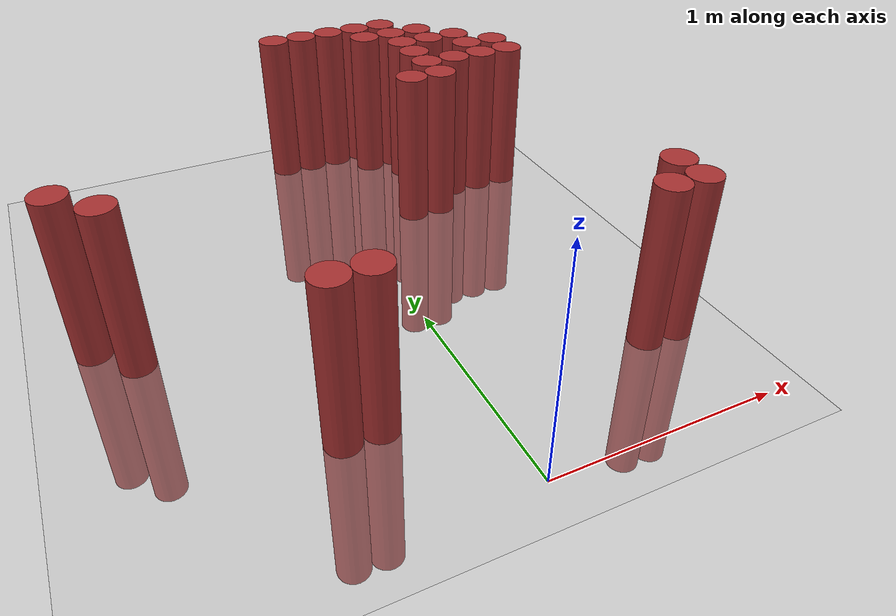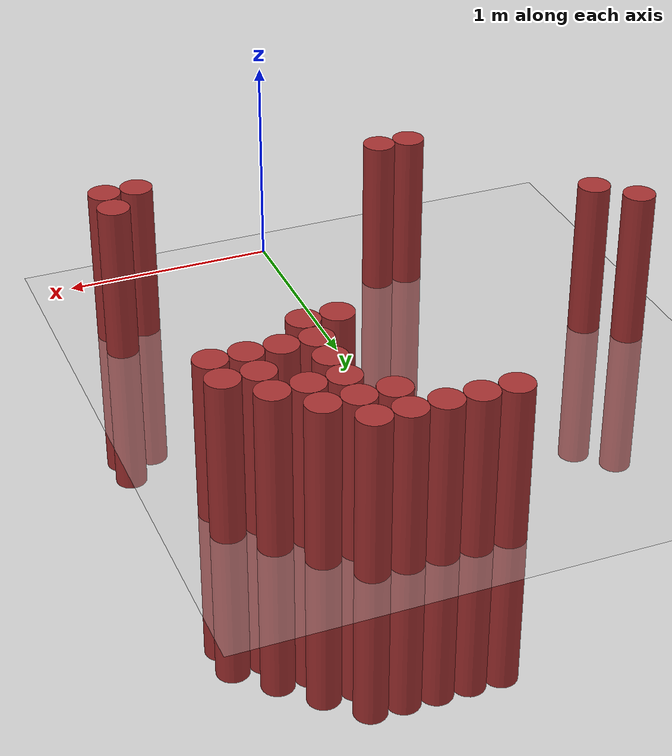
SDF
<sdf version="1.6">
 <world name="default">
  <model name="ground_plane">
   <static>1</static>
   <link name="link">
    <collision name="collision">
     <geometry><plane><normal>0 0 1</normal><size>100 100</size></plane></geometry>
     <surface><friction><ode><mu>100</mu><mu2>50</mu2></ode></friction></surface>
    </collision>
    <visual name="visual">
     <cast_shadows>0</cast_shadows>
     <geometry><plane><normal>0 0 1</normal><size>100 100</size></plane></geometry>
     <material>
      <script><uri>file://media/materials/scripts/gazebo.material</uri><name>Gazebo/Grey</name></script>
     </material>
    </visual>
   </link>
  </model>
  <model name="unit_cylinder_152">
   <static>1</static>
   <pose>-1.325000 1.375000 0.000000 0.000000 0.000000 0.000000</pose>
   <link name="link">
    <inertial>
     <mass>1</mass>
     <inertia><ixx>0.145833</ixx><ixy>0</ixy><ixz>0</ixz><iyy>0.145833</iyy><iyz>0</iyz><izz>0.125</izz></inertia>
    </inertial>
    <collision name="collision">
     <geometry><cylinder><radius>0.075000</radius><length>1.5</length></cylinder></geometry>
    </collision>
    <visual name="visual">
     <geometry><cylinder><radius>0.075000</radius><length>1.5</length></cylinder></geometry>
     <material>
      <ambient>0.648000 0.192000 0.192000 1</ambient>
      <diffuse>0.648000 0.192000 0.192000 1</diffuse>
     </material>
     <material>
      <script><name>Gazebo/Grey</name><uri>file://media/materials/scripts/gazebo.material</uri></script>
     </material>
    </visual>
   </link>
  </model>
  <model name="unit_cylinder_153">
   <static>1</static>
   <pose>-1.175000 1.225000 0.000000 0.000000 0.000000 0.000000</pose>
   <link name="link">
    <inertial>
     <mass>1</mass>
     <inertia><ixx>0.145833</ixx><ixy>0</ixy><ixz>0</ixz><iyy>0.145833</iyy><iyz>0</iyz><izz>0.125</izz></inertia>
    </inertial>
    <collision name="collision">
     <geometry><cylinder><radius>0.075000</radius><length>1.5</length></cylinder></geometry>
    </collision>
    <visual name="visual">
     <geometry><cylinder><radius>0.075000</radius><length>1.5</length></cylinder></geometry>
     <material>
      <ambient>0.648000 0.192000 0.192000 1</ambient>
      <diffuse>0.648000 0.192000 0.192000 1</diffuse>
     </material>
     <material>
      <script><name>Gazebo/Grey</name><uri>file://media/materials/scripts/gazebo.material</uri></script>
     </material>
    </visual>
   </link>
  </model>
  <model name="unit_cylinder_160">
   <static>1</static>
   <pose>-0.575000 0.475000 0.000000 0.000000 0.000000 0.000000</pose>
   <link name="link">
    <inertial>
     <mass>1</mass>
     <inertia><ixx>0.145833</ixx><ixy>0</ixy><ixz>0</ixz><iyy>0.145833</iyy><iyz>0</iyz><izz>0.125</izz></inertia>
    </inertial>
    <collision name="collision">
     <geometry><cylinder><radius>0.075000</radius><length>1.5</length></cylinder></geometry>
    </collision>
    <visual name="visual">
     <geometry><cylinder><radius>0.075000</radius><length>1.5</length></cylinder></geometry>
     <material>
      <ambient>0.648000 0.192000 0.192000 1</ambient>
      <diffuse>0.648000 0.192000 0.192000 1</diffuse>
     </material>
     <material>
      <script><name>Gazebo/Grey</name><uri>file://media/materials/scripts/gazebo.material</uri></script>
     </material>
    </visual>
   </link>
  </model>
  <model name="unit_cylinder_164">
   <static>1</static>
   <pose>-0.425000 0.475000 0.000000 0.000000 0.000000 0.000000</pose>
   <link name="link">
    <inertial>
     <mass>1</mass>
     <inertia><ixx>0.145833</ixx><ixy>0</ixy><ixz>0</ixz><iyy>0.145833</iyy><iyz>0</iyz><izz>0.125</izz></inertia>
    </inertial>
    <collision name="collision">
     <geometry><cylinder><radius>0.075000</radius><length>1.5</length></cylinder></geometry>
    </collision>
    <visual name="visual">
     <geometry><cylinder><radius>0.075000</radius><length>1.5</length></cylinder></geometry>
     <material>
      <ambient>0.648000 0.192000 0.192000 1</ambient>
      <diffuse>0.648000 0.192000 0.192000 1</diffuse>
     </material>
     <material>
      <script><name>Gazebo/Grey</name><uri>file://media/materials/scripts/gazebo.material</uri></script>
     </material>
    </visual>
   </link>
  </model>
  <model name="unit_cylinder_167">
   <static>1</static>
   <pose>-0.125000 2.575000 0.000000 0.000000 0.000000 0.000000</pose>
   <link name="link">
    <inertial>
     <mass>1</mass>
     <inertia><ixx>0.145833</ixx><ixy>0</ixy><ixz>0</ixz><iyy>0.145833</iyy><iyz>0</iyz><izz>0.125</izz></inertia>
    </inertial>
    <collision name="collision">
     <geometry><cylinder><radius>0.075000</radius><length>1.5</length></cylinder></geometry>
    </collision>
    <visual name="visual">
     <geometry><cylinder><radius>0.075000</radius><length>1.5</length></cylinder></geometry>
     <material>
      <ambient>0.648000 0.192000 0.192000 1</ambient>
      <diffuse>0.648000 0.192000 0.192000 1</diffuse>
     </material>
     <material>
      <script><name>Gazebo/Grey</name><uri>file://media/materials/scripts/gazebo.material</uri></script>
     </material>
    </visual>
   </link>
  </model>
  <model name="unit_cylinder_171">
   <static>1</static>
   <pose>0.025000 2.575000 0.000000 0.000000 0.000000 0.000000</pose>
   <link name="link">
    <inertial>
     <mass>1</mass>
     <inertia><ixx>0.145833</ixx><ixy>0</ixy><ixz>0</ixz><iyy>0.145833</iyy><iyz>0</iyz><izz>0.125</izz></inertia>
    </inertial>
    <collision name="collision">
     <geometry><cylinder><radius>0.075000</radius><length>1.5</length></cylinder></geometry>
    </collision>
    <visual name="visual">
     <geometry><cylinder><radius>0.075000</radius><length>1.5</length></cylinder></geometry>
     <material>
      <ambient>0.648000 0.192000 0.192000 1</ambient>
      <diffuse>0.648000 0.192000 0.192000 1</diffuse>
     </material>
     <material>
      <script><name>Gazebo/Grey</name><uri>file://media/materials/scripts/gazebo.material</uri></script>
     </material>
    </visual>
   </link>
  </model>
  <model name="unit_cylinder_177">
   <static>1</static>
   <pose>0.175000 2.575000 0.000000 0.000000 0.000000 0.000000</pose>
   <link name="link">
    <inertial>
     <mass>1</mass>
     <inertia><ixx>0.145833</ixx><ixy>0</ixy><ixz>0</ixz><iyy>0.145833</iyy><iyz>0</iyz><izz>0.125</izz></inertia>
    </inertial>
    <collision name="collision">
     <geometry><cylinder><radius>0.075000</radius><length>1.5</length></cylinder></geometry>
    </collision>
    <visual name="visual">
     <geometry><cylinder><radius>0.075000</radius><length>1.5</length></cylinder></geometry>
     <material>
      <ambient>0.648000 0.192000 0.192000 1</ambient>
      <diffuse>0.648000 0.192000 0.192000 1</diffuse>
     </material>
     <material>
      <script><name>Gazebo/Grey</name><uri>file://media/materials/scripts/gazebo.material</uri></script>
     </material>
    </visual>
   </link>
  </model>
  <model name="unit_cylinder_182">
   <static>1</static>
   <pose>0.325000 1.825000 0.000000 0.000000 0.000000 0.000000</pose>
   <link name="link">
    <inertial>
     <mass>1</mass>
     <inertia><ixx>0.145833</ixx><ixy>0</ixy><ixz>0</ixz><iyy>0.145833</iyy><iyz>0</iyz><izz>0.125</izz></inertia>
    </inertial>
    <collision name="collision">
     <geometry><cylinder><radius>0.075000</radius><length>1.5</length></cylinder></geometry>
    </collision>
    <visual name="visual">
     <geometry><cylinder><radius>0.075000</radius><length>1.5</length></cylinder></geometry>
     <material>
      <ambient>0.648000 0.192000 0.192000 1</ambient>
      <diffuse>0.648000 0.192000 0.192000 1</diffuse>
     </material>
     <material>
      <script><name>Gazebo/Grey</name><uri>file://media/materials/scripts/gazebo.material</uri></script>
     </material>
    </visual>
   </link>
  </model>
  <model name="unit_cylinder_183">
   <static>1</static>
   <pose>0.325000 2.425000 0.000000 0.000000 0.000000 0.000000</pose>
   <link name="link">
    <inertial>
     <mass>1</mass>
     <inertia><ixx>0.145833</ixx><ixy>0</ixy><ixz>0</ixz><iyy>0.145833</iyy><iyz>0</iyz><izz>0.125</izz></inertia>
    </inertial>
    <collision name="collision">
     <geometry><cylinder><radius>0.075000</radius><length>1.5</length></cylinder></geometry>
    </collision>
    <visual name="visual">
     <geometry><cylinder><radius>0.075000</radius><length>1.5</length></cylinder></geometry>
     <material>
      <ambient>0.648000 0.192000 0.192000 1</ambient>
      <diffuse>0.648000 0.192000 0.192000 1</diffuse>
     </material>
     <material>
      <script><name>Gazebo/Grey</name><uri>file://media/materials/scripts/gazebo.material</uri></script>
     </material>
    </visual>
   </link>
  </model>
  <model name="unit_cylinder_184">
   <static>1</static>
   <pose>0.325000 2.575000 0.000000 0.000000 0.000000 0.000000</pose>
   <link name="link">
    <inertial>
     <mass>1</mass>
     <inertia><ixx>0.145833</ixx><ixy>0</ixy><ixz>0</ixz><iyy>0.145833</iyy><iyz>0</iyz><izz>0.125</izz></inertia>
    </inertial>
    <collision name="collision">
     <geometry><cylinder><radius>0.075000</radius><length>1.5</length></cylinder></geometry>
    </collision>
    <visual name="visual">
     <geometry><cylinder><radius>0.075000</radius><length>1.5</length></cylinder></geometry>
     <material>
      <ambient>0.648000 0.192000 0.192000 1</ambient>
      <diffuse>0.648000 0.192000 0.192000 1</diffuse>
     </material>
     <material>
      <script><name>Gazebo/Grey</name><uri>file://media/materials/scripts/gazebo.material</uri></script>
     </material>
    </visual>
   </link>
  </model>
  <model name="unit_cylinder_188">
   <static>1</static>
   <pose>0.475000 1.825000 0.000000 0.000000 0.000000 0.000000</pose>
   <link name="link">
    <inertial>
     <mass>1</mass>
     <inertia><ixx>0.145833</ixx><ixy>0</ixy><ixz>0</ixz><iyy>0.145833</iyy><iyz>0</iyz><izz>0.125</izz></inertia>
    </inertial>
    <collision name="collision">
     <geometry><cylinder><radius>0.075000</radius><length>1.5</length></cylinder></geometry>
    </collision>
    <visual name="visual">
     <geometry><cylinder><radius>0.075000</radius><length>1.5</length></cylinder></geometry>
     <material>
      <ambient>0.648000 0.192000 0.192000 1</ambient>
      <diffuse>0.648000 0.192000 0.192000 1</diffuse>
     </material>
     <material>
      <script><name>Gazebo/Grey</name><uri>file://media/materials/scripts/gazebo.material</uri></script>
     </material>
    </visual>
   </link>
  </model>
  <model name="unit_cylinder_189">
   <static>1</static>
   <pose>0.475000 1.975000 0.000000 0.000000 0.000000 0.000000</pose>
   <link name="link">
    <inertial>
     <mass>1</mass>
     <inertia><ixx>0.145833</ixx><ixy>0</ixy><ixz>0</ixz><iyy>0.145833</iyy><iyz>0</iyz><izz>0.125</izz></inertia>
    </inertial>
    <collision name="collision">
     <geometry><cylinder><radius>0.075000</radius><length>1.5</length></cylinder></geometry>
    </collision>
    <visual name="visual">
     <geometry><cylinder><radius>0.075000</radius><length>1.5</length></cylinder></geometry>
     <material>
      <ambient>0.648000 0.192000 0.192000 1</ambient>
      <diffuse>0.648000 0.192000 0.192000 1</diffuse>
     </material>
     <material>
      <script><name>Gazebo/Grey</name><uri>file://media/materials/scripts/gazebo.material</uri></script>
     </material>
    </visual>
   </link>
  </model>
  <model name="unit_cylinder_190">
   <static>1</static>
   <pose>0.475000 2.125000 0.000000 0.000000 0.000000 0.000000</pose>
   <link name="link">
    <inertial>
     <mass>1</mass>
     <inertia><ixx>0.145833</ixx><ixy>0</ixy><ixz>0</ixz><iyy>0.145833</iyy><iyz>0</iyz><izz>0.125</izz></inertia>
    </inertial>
    <collision name="collision">
     <geometry><cylinder><radius>0.075000</radius><length>1.5</length></cylinder></geometry>
    </collision>
    <visual name="visual">
     <geometry><cylinder><radius>0.075000</radius><length>1.5</length></cylinder></geometry>
     <material>
      <ambient>0.648000 0.192000 0.192000 1</ambient>
      <diffuse>0.648000 0.192000 0.192000 1</diffuse>
     </material>
     <material>
      <script><name>Gazebo/Grey</name><uri>file://media/materials/scripts/gazebo.material</uri></script>
     </material>
    </visual>
   </link>
  </model>
  <model name="unit_cylinder_191">
   <static>1</static>
   <pose>0.475000 2.275000 0.000000 0.000000 0.000000 0.000000</pose>
   <link name="link">
    <inertial>
     <mass>1</mass>
     <inertia><ixx>0.145833</ixx><ixy>0</ixy><ixz>0</ixz><iyy>0.145833</iyy><iyz>0</iyz><izz>0.125</izz></inertia>
    </inertial>
    <collision name="collision">
     <geometry><cylinder><radius>0.075000</radius><length>1.5</length></cylinder></geometry>
    </collision>
    <visual name="visual">
     <geometry><cylinder><radius>0.075000</radius><length>1.5</length></cylinder></geometry>
     <material>
      <ambient>0.648000 0.192000 0.192000 1</ambient>
      <diffuse>0.648000 0.192000 0.192000 1</diffuse>
     </material>
     <material>
      <script><name>Gazebo/Grey</name><uri>file://media/materials/scripts/gazebo.material</uri></script>
     </material>
    </visual>
   </link>
  </model>
  <model name="unit_cylinder_192">
   <static>1</static>
   <pose>0.475000 2.425000 0.000000 0.000000 0.000000 0.000000</pose>
   <link name="link">
    <inertial>
     <mass>1</mass>
     <inertia><ixx>0.145833</ixx><ixy>0</ixy><ixz>0</ixz><iyy>0.145833</iyy><iyz>0</iyz><izz>0.125</izz></inertia>
    </inertial>
    <collision name="collision">
     <geometry><cylinder><radius>0.075000</radius><length>1.5</length></cylinder></geometry>
    </collision>
    <visual name="visual">
     <geometry><cylinder><radius>0.075000</radius><length>1.5</length></cylinder></geometry>
     <material>
      <ambient>0.648000 0.192000 0.192000 1</ambient>
      <diffuse>0.648000 0.192000 0.192000 1</diffuse>
     </material>
     <material>
      <script><name>Gazebo/Grey</name><uri>file://media/materials/scripts/gazebo.material</uri></script>
     </material>
    </visual>
   </link>
  </model>
  <model name="unit_cylinder_193">
   <static>1</static>
   <pose>0.475000 2.575000 0.000000 0.000000 0.000000 0.000000</pose>
   <link name="link">
    <inertial>
     <mass>1</mass>
     <inertia><ixx>0.145833</ixx><ixy>0</ixy><ixz>0</ixz><iyy>0.145833</iyy><iyz>0</iyz><izz>0.125</izz></inertia>
    </inertial>
    <collision name="collision">
     <geometry><cylinder><radius>0.075000</radius><length>1.5</length></cylinder></geometry>
    </collision>
    <visual name="visual">
     <geometry><cylinder><radius>0.075000</radius><length>1.5</length></cylinder></geometry>
     <material>
      <ambient>0.648000 0.192000 0.192000 1</ambient>
      <diffuse>0.648000 0.192000 0.192000 1</diffuse>
     </material>
     <material>
      <script><name>Gazebo/Grey</name><uri>file://media/materials/scripts/gazebo.material</uri></script>
     </material>
    </visual>
   </link>
  </model>
  <model name="unit_cylinder_196">
   <static>1</static>
   <pose>0.625000 1.975000 0.000000 0.000000 0.000000 0.000000</pose>
   <link name="link">
    <inertial>
     <mass>1</mass>
     <inertia><ixx>0.145833</ixx><ixy>0</ixy><ixz>0</ixz><iyy>0.145833</iyy><iyz>0</iyz><izz>0.125</izz></inertia>
    </inertial>
    <collision name="collision">
     <geometry><cylinder><radius>0.075000</radius><length>1.5</length></cylinder></geometry>
    </collision>
    <visual name="visual">
     <geometry><cylinder><radius>0.075000</radius><length>1.5</length></cylinder></geometry>
     <material>
      <ambient>0.648000 0.192000 0.192000 1</ambient>
      <diffuse>0.648000 0.192000 0.192000 1</diffuse>
     </material>
     <material>
      <script><name>Gazebo/Grey</name><uri>file://media/materials/scripts/gazebo.material</uri></script>
     </material>
    </visual>
   </link>
  </model>
  <model name="unit_cylinder_197">
   <static>1</static>
   <pose>0.625000 2.275000 0.000000 0.000000 0.000000 0.000000</pose>
   <link name="link">
    <inertial>
     <mass>1</mass>
     <inertia><ixx>0.145833</ixx><ixy>0</ixy><ixz>0</ixz><iyy>0.145833</iyy><iyz>0</iyz><izz>0.125</izz></inertia>
    </inertial>
    <collision name="collision">
     <geometry><cylinder><radius>0.075000</radius><length>1.5</length></cylinder></geometry>
    </collision>
    <visual name="visual">
     <geometry><cylinder><radius>0.075000</radius><length>1.5</length></cylinder></geometry>
     <material>
      <ambient>0.648000 0.192000 0.192000 1</ambient>
      <diffuse>0.648000 0.192000 0.192000 1</diffuse>
     </material>
     <material>
      <script><name>Gazebo/Grey</name><uri>file://media/materials/scripts/gazebo.material</uri></script>
     </material>
    </visual>
   </link>
  </model>
  <model name="unit_cylinder_198">
   <static>1</static>
   <pose>0.625000 2.425000 0.000000 0.000000 0.000000 0.000000</pose>
   <link name="link">
    <inertial>
     <mass>1</mass>
     <inertia><ixx>0.145833</ixx><ixy>0</ixy><ixz>0</ixz><iyy>0.145833</iyy><iyz>0</iyz><izz>0.125</izz></inertia>
    </inertial>
    <collision name="collision">
     <geometry><cylinder><radius>0.075000</radius><length>1.5</length></cylinder></geometry>
    </collision>
    <visual name="visual">
     <geometry><cylinder><radius>0.075000</radius><length>1.5</length></cylinder></geometry>
     <material>
      <ambient>0.648000 0.192000 0.192000 1</ambient>
      <diffuse>0.648000 0.192000 0.192000 1</diffuse>
     </material>
     <material>
      <script><name>Gazebo/Grey</name><uri>file://media/materials/scripts/gazebo.material</uri></script>
     </material>
    </visual>
   </link>
  </model>
  <model name="unit_cylinder_200">
   <static>1</static>
   <pose>0.775000 0.475000 0.000000 0.000000 0.000000 0.000000</pose>
   <link name="link">
    <inertial>
     <mass>1</mass>
     <inertia><ixx>0.145833</ixx><ixy>0</ixy><ixz>0</ixz><iyy>0.145833</iyy><iyz>0</iyz><izz>0.125</izz></inertia>
    </inertial>
    <collision name="collision">
     <geometry><cylinder><radius>0.075000</radius><length>1.5</length></cylinder></geometry>
    </collision>
    <visual name="visual">
     <geometry><cylinder><radius>0.075000</radius><length>1.5</length></cylinder></geometry>
     <material>
      <ambient>0.648000 0.192000 0.192000 1</ambient>
      <diffuse>0.648000 0.192000 0.192000 1</diffuse>
     </material>
     <material>
      <script><name>Gazebo/Grey</name><uri>file://media/materials/scripts/gazebo.material</uri></script>
     </material>
    </visual>
   </link>
  </model>
  <model name="unit_cylinder_201">
   <static>1</static>
   <pose>0.775000 1.975000 0.000000 0.000000 0.000000 0.000000</pose>
   <link name="link">
    <inertial>
     <mass>1</mass>
     <inertia><ixx>0.145833</ixx><ixy>0</ixy><ixz>0</ixz><iyy>0.145833</iyy><iyz>0</iyz><izz>0.125</izz></inertia>
    </inertial>
    <collision name="collision">
     <geometry><cylinder><radius>0.075000</radius><length>1.5</length></cylinder></geometry>
    </collision>
    <visual name="visual">
     <geometry><cylinder><radius>0.075000</radius><length>1.5</length></cylinder></geometry>
     <material>
      <ambient>0.648000 0.192000 0.192000 1</ambient>
      <diffuse>0.648000 0.192000 0.192000 1</diffuse>
     </material>
     <material>
      <script><name>Gazebo/Grey</name><uri>file://media/materials/scripts/gazebo.material</uri></script>
     </material>
    </visual>
   </link>
  </model>
  <model name="unit_cylinder_202">
   <static>1</static>
   <pose>0.775000 2.125000 0.000000 0.000000 0.000000 0.000000</pose>
   <link name="link">
    <inertial>
     <mass>1</mass>
     <inertia><ixx>0.145833</ixx><ixy>0</ixy><ixz>0</ixz><iyy>0.145833</iyy><iyz>0</iyz><izz>0.125</izz></inertia>
    </inertial>
    <collision name="collision">
     <geometry><cylinder><radius>0.075000</radius><length>1.5</length></cylinder></geometry>
    </collision>
    <visual name="visual">
     <geometry><cylinder><radius>0.075000</radius><length>1.5</length></cylinder></geometry>
     <material>
      <ambient>0.648000 0.192000 0.192000 1</ambient>
      <diffuse>0.648000 0.192000 0.192000 1</diffuse>
     </material>
     <material>
      <script><name>Gazebo/Grey</name><uri>file://media/materials/scripts/gazebo.material</uri></script>
     </material>
    </visual>
   </link>
  </model>
  <model name="unit_cylinder_203">
   <static>1</static>
   <pose>0.775000 2.275000 0.000000 0.000000 0.000000 0.000000</pose>
   <link name="link">
    <inertial>
     <mass>1</mass>
     <inertia><ixx>0.145833</ixx><ixy>0</ixy><ixz>0</ixz><iyy>0.145833</iyy><iyz>0</iyz><izz>0.125</izz></inertia>
    </inertial>
    <collision name="collision">
     <geometry><cylinder><radius>0.075000</radius><length>1.5</length></cylinder></geometry>
    </collision>
    <visual name="visual">
     <geometry><cylinder><radius>0.075000</radius><length>1.5</length></cylinder></geometry>
     <material>
      <ambient>0.648000 0.192000 0.192000 1</ambient>
      <diffuse>0.648000 0.192000 0.192000 1</diffuse>
     </material>
     <material>
      <script><name>Gazebo/Grey</name><uri>file://media/materials/scripts/gazebo.material</uri></script>
     </material>
    </visual>
   </link>
  </model>
  <model name="unit_cylinder_206">
   <static>1</static>
   <pose>0.925000 0.475000 0.000000 0.000000 0.000000 0.000000</pose>
   <link name="link">
    <inertial>
     <mass>1</mass>
     <inertia><ixx>0.145833</ixx><ixy>0</ixy><ixz>0</ixz><iyy>0.145833</iyy><iyz>0</iyz><izz>0.125</izz></inertia>
    </inertial>
    <collision name="collision">
     <geometry><cylinder><radius>0.075000</radius><length>1.5</length></cylinder></geometry>
    </collision>
    <visual name="visual">
     <geometry><cylinder><radius>0.075000</radius><length>1.5</length></cylinder></geometry>
     <material>
      <ambient>0.648000 0.192000 0.192000 1</ambient>
      <diffuse>0.648000 0.192000 0.192000 1</diffuse>
     </material>
     <material>
      <script><name>Gazebo/Grey</name><uri>file://media/materials/scripts/gazebo.material</uri></script>
     </material>
    </visual>
   </link>
  </model>
  <model name="unit_cylinder_207">
   <static>1</static>
   <pose>0.925000 0.625000 0.000000 0.000000 0.000000 0.000000</pose>
   <link name="link">
    <inertial>
     <mass>1</mass>
     <inertia><ixx>0.145833</ixx><ixy>0</ixy><ixz>0</ixz><iyy>0.145833</iyy><iyz>0</iyz><izz>0.125</izz></inertia>
    </inertial>
    <collision name="collision">
     <geometry><cylinder><radius>0.075000</radius><length>1.5</length></cylinder></geometry>
    </collision>
    <visual name="visual">
     <geometry><cylinder><radius>0.075000</radius><length>1.5</length></cylinder></geometry>
     <material>
      <ambient>0.648000 0.192000 0.192000 1</ambient>
      <diffuse>0.648000 0.192000 0.192000 1</diffuse>
     </material>
     <material>
      <script><name>Gazebo/Grey</name><uri>file://media/materials/scripts/gazebo.material</uri></script>
     </material>
    </visual>
   </link>
  </model>
  <model name="unit_cylinder_208">
   <static>1</static>
   <pose>0.925000 1.975000 0.000000 0.000000 0.000000 0.000000</pose>
   <link name="link">
    <inertial>
     <mass>1</mass>
     <inertia><ixx>0.145833</ixx><ixy>0</ixy><ixz>0</ixz><iyy>0.145833</iyy><iyz>0</iyz><izz>0.125</izz></inertia>
    </inertial>
    <collision name="collision">
     <geometry><cylinder><radius>0.075000</radius><length>1.5</length></cylinder></geometry>
    </collision>
    <visual name="visual">
     <geometry><cylinder><radius>0.075000</radius><length>1.5</length></cylinder></geometry>
     <material>
      <ambient>0.648000 0.192000 0.192000 1</ambient>
      <diffuse>0.648000 0.192000 0.192000 1</diffuse>
     </material>
     <material>
      <script><name>Gazebo/Grey</name><uri>file://media/materials/scripts/gazebo.material</uri></script>
     </material>
    </visual>
   </link>
  </model>
  <model name="unit_cylinder_209">
   <static>1</static>
   <pose>0.925000 2.125000 0.000000 0.000000 0.000000 0.000000</pose>
   <link name="link">
    <inertial>
     <mass>1</mass>
     <inertia><ixx>0.145833</ixx><ixy>0</ixy><ixz>0</ixz><iyy>0.145833</iyy><iyz>0</iyz><izz>0.125</izz></inertia>
    </inertial>
    <collision name="collision">
     <geometry><cylinder><radius>0.075000</radius><length>1.5</length></cylinder></geometry>
    </collision>
    <visual name="visual">
     <geometry><cylinder><radius>0.075000</radius><length>1.5</length></cylinder></geometry>
     <material>
      <ambient>0.648000 0.192000 0.192000 1</ambient>
      <diffuse>0.648000 0.192000 0.192000 1</diffuse>
     </material>
     <material>
      <script><name>Gazebo/Grey</name><uri>file://media/materials/scripts/gazebo.material</uri></script>
     </material>
    </visual>
   </link>
  </model>
 </world>
</sdf>
